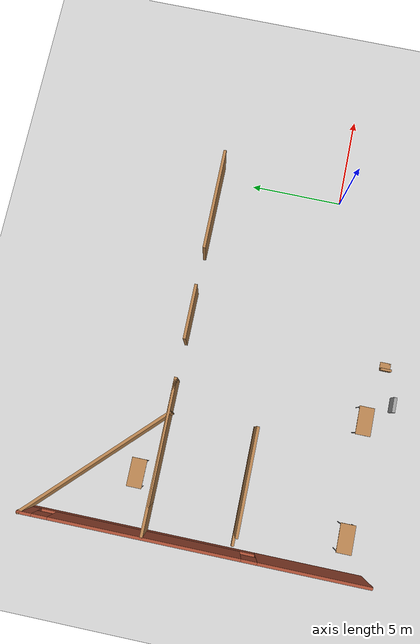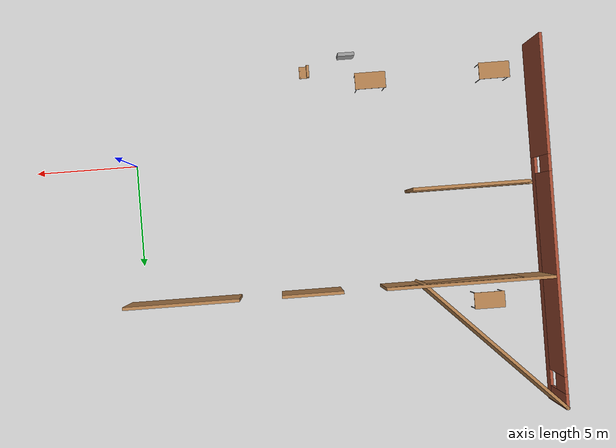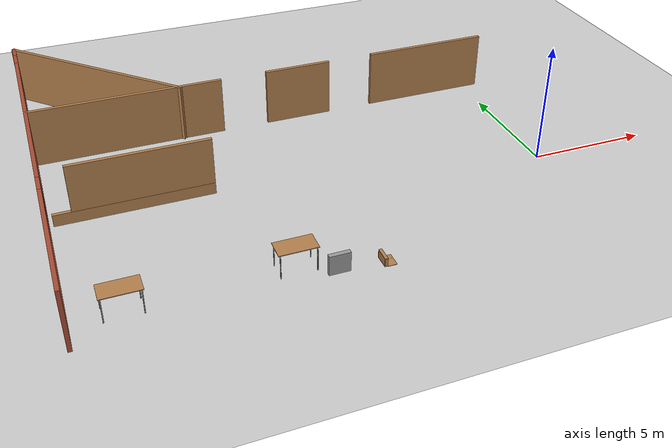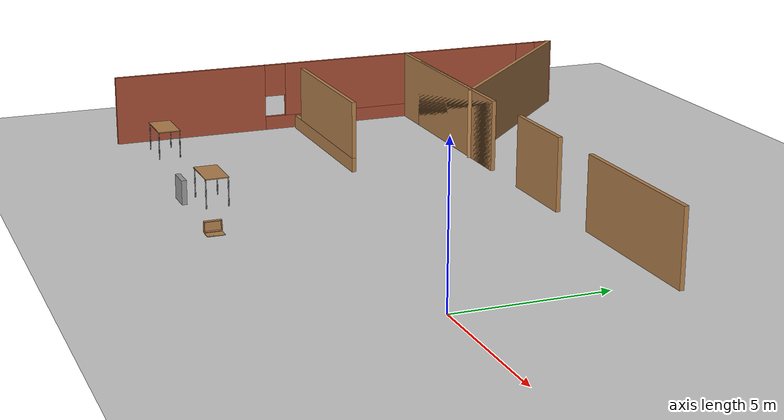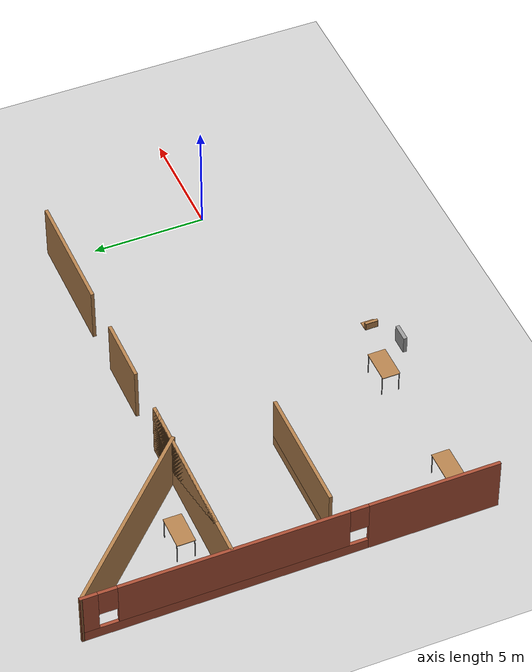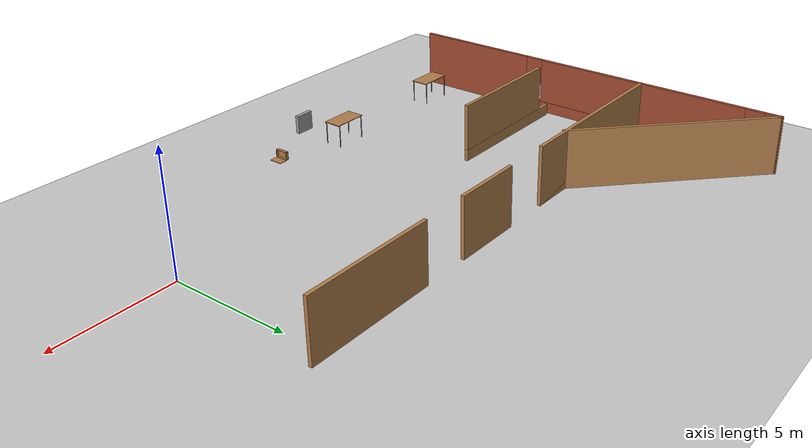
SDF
<sdf version="1.6">
 <world name="default">
  <model name="ground_plane">
   <static>1</static>
   <link name="link">
    <collision name="collision">
     <geometry><plane><normal>0 0 1</normal><size>100 100</size></plane></geometry>
     <surface>
      <contact><collide_bitmask>65535</collide_bitmask></contact>
      <friction><ode><mu>100</mu><mu2>50</mu2></ode></friction>
     </surface>
    </collision>
    <visual name="visual">
     <cast_shadows>0</cast_shadows>
     <geometry><plane><normal>0 0 1</normal><size>100 100</size></plane></geometry>
     <material>
      <script><uri>file://media/materials/scripts/gazebo.material</uri><name>Gazebo/Grey</name></script>
     </material>
    </visual>
   </link>
  </model>
  <model name="table_0">
   <static>1</static>
   <link name="link">
    <collision name="surface">
     <pose>0 0 1 0 -0 0</pose>
     <geometry><box><size>1.5 0.8 0.03</size></box></geometry>
     <surface><friction><ode><mu>0.6</mu><mu2>0.6</mu2></ode></friction></surface>
    </collision>
    <visual name="visual1">
     <pose>0 0 1 0 -0 0</pose>
     <geometry><box><size>1.5 0.8 0.03</size></box></geometry>
     <material>
      <script><uri>file://media/materials/scripts/gazebo.material</uri><name>Gazebo/Wood</name></script>
     </material>
    </visual>
    <collision name="front_left_leg">
     <pose>0.68 0.38 0.5 0 -0 0</pose>
     <geometry><cylinder><radius>0.02</radius><length>1</length></cylinder></geometry>
    </collision>
    <visual name="front_left_leg">
     <pose>0.68 0.38 0.5 0 -0 0</pose>
     <geometry><cylinder><radius>0.02</radius><length>1</length></cylinder></geometry>
     <material>
      <script><uri>file://media/materials/scripts/gazebo.material</uri><name>Gazebo/Grey</name></script>
     </material>
    </visual>
    <collision name="front_right_leg">
     <pose>0.68 -0.38 0.5 0 -0 0</pose>
     <geometry><cylinder><radius>0.02</radius><length>1</length></cylinder></geometry>
    </collision>
    <visual name="front_right_leg">
     <pose>0.68 -0.38 0.5 0 -0 0</pose>
     <geometry><cylinder><radius>0.02</radius><length>1</length></cylinder></geometry>
     <material>
      <script><uri>file://media/materials/scripts/gazebo.material</uri><name>Gazebo/Grey</name></script>
     </material>
    </visual>
    <collision name="back_right_leg">
     <pose>-0.68 -0.38 0.5 0 -0 0</pose>
     <geometry><cylinder><radius>0.02</radius><length>1</length></cylinder></geometry>
    </collision>
    <visual name="back_right_leg">
     <pose>-0.68 -0.38 0.5 0 -0 0</pose>
     <geometry><cylinder><radius>0.02</radius><length>1</length></cylinder></geometry>
     <material>
      <script><uri>file://media/materials/scripts/gazebo.material</uri><name>Gazebo/Grey</name></script>
     </material>
    </visual>
    <collision name="back_left_leg">
     <pose>-0.68 0.38 0.5 0 -0 0</pose>
     <geometry><cylinder><radius>0.02</radius><length>1</length></cylinder></geometry>
    </collision>
    <visual name="back_left_leg">
     <pose>-0.68 0.38 0.5 0 -0 0</pose>
     <geometry><cylinder><radius>0.02</radius><length>1</length></cylinder></geometry>
     <material>
      <script><uri>file://media/materials/scripts/gazebo.material</uri><name>Gazebo/Grey</name></script>
     </material>
    </visual>
   </link>
   <pose>-11.8478 -3.25901 0 0 -0 0</pose>
  </model>
  <model name="table_1">
   <static>1</static>
   <link name="link">
    <collision name="surface">
     <pose>0 0 1 0 -0 0</pose>
     <geometry><box><size>1.5 0.8 0.03</size></box></geometry>
     <surface><friction><ode><mu>0.6</mu><mu2>0.6</mu2></ode></friction></surface>
    </collision>
    <visual name="visual1">
     <pose>0 0 1 0 -0 0</pose>
     <geometry><box><size>1.5 0.8 0.03</size></box></geometry>
     <material>
      <script><uri>file://media/materials/scripts/gazebo.material</uri><name>Gazebo/Wood</name></script>
     </material>
    </visual>
    <collision name="front_left_leg">
     <pose>0.68 0.38 0.5 0 -0 0</pose>
     <geometry><cylinder><radius>0.02</radius><length>1</length></cylinder></geometry>
    </collision>
    <visual name="front_left_leg">
     <pose>0.68 0.38 0.5 0 -0 0</pose>
     <geometry><cylinder><radius>0.02</radius><length>1</length></cylinder></geometry>
     <material>
      <script><uri>file://media/materials/scripts/gazebo.material</uri><name>Gazebo/Grey</name></script>
     </material>
    </visual>
    <collision name="front_right_leg">
     <pose>0.68 -0.38 0.5 0 -0 0</pose>
     <geometry><cylinder><radius>0.02</radius><length>1</length></cylinder></geometry>
    </collision>
    <visual name="front_right_leg">
     <pose>0.68 -0.38 0.5 0 -0 0</pose>
     <geometry><cylinder><radius>0.02</radius><length>1</length></cylinder></geometry>
     <material>
      <script><uri>file://media/materials/scripts/gazebo.material</uri><name>Gazebo/Grey</name></script>
     </material>
    </visual>
    <collision name="back_right_leg">
     <pose>-0.68 -0.38 0.5 0 -0 0</pose>
     <geometry><cylinder><radius>0.02</radius><length>1</length></cylinder></geometry>
    </collision>
    <visual name="back_right_leg">
     <pose>-0.68 -0.38 0.5 0 -0 0</pose>
     <geometry><cylinder><radius>0.02</radius><length>1</length></cylinder></geometry>
     <material>
      <script><uri>file://media/materials/scripts/gazebo.material</uri><name>Gazebo/Grey</name></script>
     </material>
    </visual>
    <collision name="back_left_leg">
     <pose>-0.68 0.38 0.5 0 -0 0</pose>
     <geometry><cylinder><radius>0.02</radius><length>1</length></cylinder></geometry>
    </collision>
    <visual name="back_left_leg">
     <pose>-0.68 0.38 0.5 0 -0 0</pose>
     <geometry><cylinder><radius>0.02</radius><length>1</length></cylinder></geometry>
     <material>
      <script><uri>file://media/materials/scripts/gazebo.material</uri><name>Gazebo/Grey</name></script>
     </material>
    </visual>
   </link>
   <pose>-17.9186 -3.30988 0 0 -0 0</pose>
  </model>
  <model name="table_2">
   <static>1</static>
   <link name="link">
    <collision name="surface">
     <pose>0 0 1 0 -0 0</pose>
     <geometry><box><size>1.5 0.8 0.03</size></box></geometry>
     <surface><friction><ode><mu>0.6</mu><mu2>0.6</mu2></ode></friction></surface>
    </collision>
    <visual name="visual1">
     <pose>0 0 1 0 -0 0</pose>
     <geometry><box><size>1.5 0.8 0.03</size></box></geometry>
     <material>
      <script><uri>file://media/materials/scripts/gazebo.material</uri><name>Gazebo/Wood</name></script>
     </material>
    </visual>
    <collision name="front_left_leg">
     <pose>0.68 0.38 0.5 0 -0 0</pose>
     <geometry><cylinder><radius>0.02</radius><length>1</length></cylinder></geometry>
    </collision>
    <visual name="front_left_leg">
     <pose>0.68 0.38 0.5 0 -0 0</pose>
     <geometry><cylinder><radius>0.02</radius><length>1</length></cylinder></geometry>
     <material>
      <script><uri>file://media/materials/scripts/gazebo.material</uri><name>Gazebo/Grey</name></script>
     </material>
    </visual>
    <collision name="front_right_leg">
     <pose>0.68 -0.38 0.5 0 -0 0</pose>
     <geometry><cylinder><radius>0.02</radius><length>1</length></cylinder></geometry>
    </collision>
    <visual name="front_right_leg">
     <pose>0.68 -0.38 0.5 0 -0 0</pose>
     <geometry><cylinder><radius>0.02</radius><length>1</length></cylinder></geometry>
     <material>
      <script><uri>file://media/materials/scripts/gazebo.material</uri><name>Gazebo/Grey</name></script>
     </material>
    </visual>
    <collision name="back_right_leg">
     <pose>-0.68 -0.38 0.5 0 -0 0</pose>
     <geometry><cylinder><radius>0.02</radius><length>1</length></cylinder></geometry>
    </collision>
    <visual name="back_right_leg">
     <pose>-0.68 -0.38 0.5 0 -0 0</pose>
     <geometry><cylinder><radius>0.02</radius><length>1</length></cylinder></geometry>
     <material>
      <script><uri>file://media/materials/scripts/gazebo.material</uri><name>Gazebo/Grey</name></script>
     </material>
    </visual>
    <collision name="back_left_leg">
     <pose>-0.68 0.38 0.5 0 -0 0</pose>
     <geometry><cylinder><radius>0.02</radius><length>1</length></cylinder></geometry>
    </collision>
    <visual name="back_left_leg">
     <pose>-0.68 0.38 0.5 0 -0 0</pose>
     <geometry><cylinder><radius>0.02</radius><length>1</length></cylinder></geometry>
     <material>
      <script><uri>file://media/materials/scripts/gazebo.material</uri><name>Gazebo/Grey</name></script>
     </material>
    </visual>
   </link>
   <pose>-16.8726 7.8756 0 0 -0 0</pose>
  </model>
  <model name="wooden_case">
   <link name="base">
    <pose>0 0 0.024 0 -0 0</pose>
    <inertial>
     <pose>-0.022184 0 0.171592 0 -0 0</pose>
     <mass>3.96264</mass>
     <inertia>
      <ixx>0.213536</ixx>
      <ixy>0</ixy>
      <ixz>0.000779377</ixz>
      <iyy>0.0708943</iyy>
      <iyz>0</iyz>
      <izz>0.154604</izz>
     </inertia>
    </inertial>
    <collision name="collision_back">
     <pose>-0.053975 0 0.1778 0 -0 0</pose>
     <geometry><box><size>0.01905 0.5461 0.3175</size></box></geometry>
     <surface>
      <contact>
       <poissons_ratio>0.347</poissons_ratio>
       <elastic_modulus>8.8e+09</elastic_modulus>
       <ode><kp>100000</kp><kd>100</kd><max_vel>100</max_vel><min_depth>0.001</min_depth></ode>
      </contact>
      <friction>
       <torsional>
        <coefficient>1</coefficient>
        <use_patch_radius>0</use_patch_radius>
        <surface_radius>0.01</surface_radius>
       </torsional>
      </friction>
     </surface>
    </collision>
    <visual name="visual_back">
     <pose>-0.053975 0 0.1778 0 -0 0</pose>
     <geometry><box><size>0.01905 0.5461 0.3175</size></box></geometry>
     <material>
      <script><uri>file://media/materials/scripts/gazebo.material</uri><name>Gazebo/Wood</name></script>
     </material>
    </visual>
    <collision name="collision_bottom">
     <pose>0 0 0.009525 0 -0 0</pose>
     <geometry><box><size>0.127 0.5842 0.01905</size></box></geometry>
     <surface>
      <contact>
       <poissons_ratio>0.347</poissons_ratio>
       <elastic_modulus>8.8e+09</elastic_modulus>
       <ode><kp>100000</kp><kd>100</kd><max_vel>100</max_vel><min_depth>0.001</min_depth></ode>
      </contact>
      <friction>
       <torsional>
        <coefficient>1</coefficient>
        <use_patch_radius>0</use_patch_radius>
        <surface_radius>0.01</surface_radius>
       </torsional>
      </friction>
     </surface>
    </collision>
    <visual name="visual_bottom">
     <pose>0 0 0.009525 0 -0 0</pose>
     <geometry><box><size>0.127 0.5842 0.01905</size></box></geometry>
     <material>
      <script><uri>file://media/materials/scripts/gazebo.material</uri><name>Gazebo/Wood</name></script>
     </material>
    </visual>
    <collision name="collision_top">
     <pose>0 0 0.346075 0 -0 0</pose>
     <geometry><box><size>0.127 0.5842 0.01905</size></box></geometry>
     <surface>
      <contact>
       <poissons_ratio>0.347</poissons_ratio>
       <elastic_modulus>8.8e+09</elastic_modulus>
       <ode><kp>100000</kp><kd>100</kd><max_vel>100</max_vel><min_depth>0.001</min_depth></ode>
      </contact>
      <friction>
       <torsional>
        <coefficient>1</coefficient>
        <use_patch_radius>0</use_patch_radius>
        <surface_radius>0.01</surface_radius>
       </torsional>
      </friction>
     </surface>
    </collision>
    <visual name="visual_top">
     <pose>0 0 0.346075 0 -0 0</pose>
     <geometry><box><size>0.127 0.5842 0.01905</size></box></geometry>
     <material>
      <script><uri>file://media/materials/scripts/gazebo.material</uri><name>Gazebo/Wood</name></script>
     </material>
    </visual>
    <collision name="collision_left">
     <pose>0 -0.282575 0.1778 0 -0 0</pose>
     <geometry><box><size>0.127 0.01905 0.3175</size></box></geometry>
     <surface>
      <contact>
       <poissons_ratio>0.347</poissons_ratio>
       <elastic_modulus>8.8e+09</elastic_modulus>
       <ode><kp>100000</kp><kd>100</kd><max_vel>100</max_vel><min_depth>0.001</min_depth></ode>
      </contact>
      <friction>
       <torsional>
        <coefficient>1</coefficient>
        <use_patch_radius>0</use_patch_radius>
        <surface_radius>0.01</surface_radius>
       </torsional>
      </friction>
     </surface>
    </collision>
    <visual name="visual_left">
     <pose>0 -0.282575 0.1778 0 -0 0</pose>
     <geometry><box><size>0.127 0.01905 0.3175</size></box></geometry>
     <material>
      <script><uri>file://media/materials/scripts/gazebo.material</uri><name>Gazebo/Wood</name></script>
     </material>
    </visual>
    <collision name="collision_right">
     <pose>0 0.282575 0.1778 0 -0 0</pose>
     <geometry><box><size>0.127 0.01905 0.3175</size></box></geometry>
     <surface>
      <contact>
       <poissons_ratio>0.347</poissons_ratio>
       <elastic_modulus>8.8e+09</elastic_modulus>
       <ode><kp>100000</kp><kd>100</kd><max_vel>100</max_vel><min_depth>0.001</min_depth></ode>
      </contact>
      <friction>
       <torsional>
        <coefficient>1</coefficient>
        <use_patch_radius>0</use_patch_radius>
        <surface_radius>0.01</surface_radius>
       </torsional>
      </friction>
     </surface>
    </collision>
    <visual name="visual_right">
     <pose>0 0.282575 0.1778 0 -0 0</pose>
     <geometry><box><size>0.127 0.01905 0.3175</size></box></geometry>
     <material>
      <script><uri>file://media/materials/scripts/gazebo.material</uri><name>Gazebo/Wood</name></script>
     </material>
    </visual>
    <collision name="collision_block_left">
     <pose>0.0095 -0.2151 -0.012 0 -0 0</pose>
     <geometry><box><size>0.108 0.05 0.024</size></box></geometry>
     <surface>
      <contact>
       <poissons_ratio>0.347</poissons_ratio>
       <elastic_modulus>8.8e+09</elastic_modulus>
       <ode><kp>100000</kp><kd>100</kd><max_vel>100</max_vel><min_depth>0.001</min_depth></ode>
      </contact>
      <friction>
       <torsional>
        <coefficient>1</coefficient>
        <use_patch_radius>0</use_patch_radius>
        <surface_radius>0.01</surface_radius>
       </torsional>
      </friction>
     </surface>
    </collision>
    <visual name="visual_block_left">
     <pose>0.0095 -0.2151 -0.012 0 -0 0</pose>
     <geometry><box><size>0.108 0.05 0.024</size></box></geometry>
     <material>
      <script><uri>file://media/materials/scripts/gazebo.material</uri><name>Gazebo/Wood</name></script>
     </material>
    </visual>
    <collision name="collision_block_right">
     <pose>0.0095 0.2151 -0.012 0 -0 0</pose>
     <geometry><box><size>0.108 0.05 0.024</size></box></geometry>
     <surface>
      <contact>
       <poissons_ratio>0.347</poissons_ratio>
       <elastic_modulus>8.8e+09</elastic_modulus>
       <ode><kp>100000</kp><kd>100</kd><max_vel>100</max_vel><min_depth>0.001</min_depth></ode>
      </contact>
      <friction>
       <torsional>
        <coefficient>1</coefficient>
        <use_patch_radius>0</use_patch_radius>
        <surface_radius>0.01</surface_radius>
       </torsional>
      </friction>
     </surface>
    </collision>
    <visual name="visual_block_right">
     <pose>0.0095 0.2151 -0.012 0 -0 0</pose>
     <geometry><box><size>0.108 0.05 0.024</size></box></geometry>
     <material>
      <script><uri>file://media/materials/scripts/gazebo.material</uri><name>Gazebo/Wood</name></script>
     </material>
    </visual>
   </link>
   <link name="lid">
    <pose>0.243775 0 0.009525 0 -0 0</pose>
    <inertial>
     <mass>1.97874</mass>
     <inertia>
      <ixx>0.0563367</ixx>
      <ixy>0</ixy>
      <ixz>0</ixz>
      <iyy>0.020911</iyy>
      <iyz>0</iyz>
      <izz>0.0771281</izz>
     </inertia>
    </inertial>
    <collision name="collision">
     <geometry><box><size>0.3556 0.5842 0.01905</size></box></geometry>
     <surface>
      <contact>
       <poissons_ratio>0.347</poissons_ratio>
       <elastic_modulus>8.8e+09</elastic_modulus>
       <ode><kp>100000</kp><kd>100</kd><max_vel>100</max_vel><min_depth>0.001</min_depth></ode>
      </contact>
      <friction>
       <torsional>
        <coefficient>1</coefficient>
        <use_patch_radius>0</use_patch_radius>
        <surface_radius>0.01</surface_radius>
       </torsional>
      </friction>
     </surface>
    </collision>
    <visual name="visual">
     <geometry><box><size>0.3556 0.5842 0.01905</size></box></geometry>
     <material>
      <script><uri>file://media/materials/scripts/gazebo.material</uri><name>Gazebo/Wood</name></script>
     </material>
    </visual>
    <visual name="tee_nut_1">
     <pose>0.122 -0.216 0 0 -0 0</pose>
     <geometry><cylinder><radius>0.00635</radius><length>0.0192405</length></cylinder></geometry>
     <material>
      <script><uri>file://media/materials/scripts/gazebo.material</uri><name>Gazebo/Grey</name></script>
     </material>
    </visual>
    <visual name="tee_nut_2">
     <pose>0.122 -0.088 0 0 -0 0</pose>
     <geometry><cylinder><radius>0.00635</radius><length>0.0192405</length></cylinder></geometry>
     <material>
      <script><uri>file://media/materials/scripts/gazebo.material</uri><name>Gazebo/Grey</name></script>
     </material>
    </visual>
    <visual name="tee_nut_3">
     <pose>0.122 0.088 0 0 -0 0</pose>
     <geometry><cylinder><radius>0.00635</radius><length>0.0192405</length></cylinder></geometry>
     <material>
      <script><uri>file://media/materials/scripts/gazebo.material</uri><name>Gazebo/Grey</name></script>
     </material>
    </visual>
    <visual name="tee_nut_4">
     <pose>0.122 0.216 0 0 -0 0</pose>
     <geometry><cylinder><radius>0.00635</radius><length>0.0192405</length></cylinder></geometry>
     <material>
      <script><uri>file://media/materials/scripts/gazebo.material</uri><name>Gazebo/Grey</name></script>
     </material>
    </visual>
   </link>
   <joint name="lid_hinge" type="revolute">
    <pose>-0.1778 0 0.01905 0 -0 0</pose>
    <parent>base</parent>
    <child>lid</child>
    <axis>
     <xyz>0 1 0</xyz>
     <limit><upper>0.523599</upper><lower>-1.5708</lower></limit>
     <use_parent_model_frame>0</use_parent_model_frame>
     <dynamics><spring_reference>0</spring_reference><spring_stiffness>0</spring_stiffness></dynamics>
    </axis>
   </joint>
   <pose>-8.86546 -4.06321 -0.001057 0 -0.000428 -1e-06</pose>
  </model>
  <model name="mybuilding">
   <link name="Wall_43">
    <pose>-19.7987 0.007562 0 0 -0 1.5708</pose>
    <visual name="Wall_43_Visual_0">
     <pose>-6.02432 0 1.25 0 -0 0</pose>
     <geometry><box><size>5.70136 0.15 2.5</size></box></geometry>
     <material>
      <script><uri>file://media/materials/scripts/gazebo.material</uri><name>Gazebo/Bricks</name></script>
      <ambient>1 1 1 1</ambient>
      <shader type="pixel"/>
      <diffuse>1 1 1 1</diffuse>
      <specular>0.2 0.2 0.2 1</specular>
      <emissive>0 0 0 1</emissive>
     </material>
     <meta><layer>0</layer></meta>
    </visual>
    <visual name="Wall_43_Visual_1">
     <pose>2.85068 0 0.25 0 -0 0</pose>
     <geometry><box><size>12.0486 0.15 0.5</size></box></geometry>
     <material>
      <script><uri>file://media/materials/scripts/gazebo.material</uri><name>Gazebo/Bricks</name></script>
      <ambient>1 1 1 1</ambient>
      <shader type="pixel"/>
      <diffuse>1 1 1 1</diffuse>
      <specular>0.2 0.2 0.2 1</specular>
      <emissive>0 0 0 1</emissive>
     </material>
     <meta><layer>0</layer></meta>
    </visual>
    <visual name="Wall_43_Visual_2">
     <pose>2.47839 0 1.5 0 -0 0</pose>
     <geometry><box><size>9.70406 0.15 2</size></box></geometry>
     <material>
      <script><uri>file://media/materials/scripts/gazebo.material</uri><name>Gazebo/Bricks</name></script>
      <ambient>1 1 1 1</ambient>
      <shader type="pixel"/>
      <diffuse>1 1 1 1</diffuse>
      <specular>0.2 0.2 0.2 1</specular>
      <emissive>0 0 0 1</emissive>
     </material>
     <meta><layer>0</layer></meta>
    </visual>
    <visual name="Wall_43_Visual_3">
     <pose>8.50271 0 1.5 0 -0 0</pose>
     <geometry><box><size>0.744584 0.15 2</size></box></geometry>
     <material>
      <script><uri>file://media/materials/scripts/gazebo.material</uri><name>Gazebo/Bricks</name></script>
      <ambient>1 1 1 1</ambient>
      <shader type="pixel"/>
      <diffuse>1 1 1 1</diffuse>
      <specular>0.2 0.2 0.2 1</specular>
      <emissive>0 0 0 1</emissive>
     </material>
     <meta><layer>0</layer></meta>
    </visual>
    <visual name="Wall_43_Visual_4">
     <pose>-2.77364 0 1.9 0 -0 0</pose>
     <geometry><box><size>0.8 0.15 1.2</size></box></geometry>
     <material>
      <script><uri>file://media/materials/scripts/gazebo.material</uri><name>Gazebo/Bricks</name></script>
      <ambient>1 1 1 1</ambient>
      <shader type="pixel"/>
      <diffuse>1 1 1 1</diffuse>
      <specular>0.2 0.2 0.2 1</specular>
      <emissive>0 0 0 1</emissive>
     </material>
     <meta><layer>0</layer></meta>
    </visual>
    <visual name="Wall_43_Visual_5">
     <pose>7.73042 0 1.9 0 -0 0</pose>
     <geometry><box><size>0.8 0.15 1.2</size></box></geometry>
     <material>
      <script><uri>file://media/materials/scripts/gazebo.material</uri><name>Gazebo/Bricks</name></script>
      <ambient>1 1 1 1</ambient>
      <shader type="pixel"/>
      <diffuse>1 1 1 1</diffuse>
      <specular>0.2 0.2 0.2 1</specular>
      <emissive>0 0 0 1</emissive>
     </material>
     <meta><layer>0</layer></meta>
    </visual>
    <collision name="Wall_43_Collision_0">
     <pose>-6.02432 0 1.25 0 -0 0</pose>
     <geometry><box><size>5.70136 0.15 2.5</size></box></geometry>
     <surface>
      <friction>
       <ode><mu>1</mu><mu2>1</mu2><fdir1>0 0 0</fdir1><slip1>0</slip1><slip2>0</slip2></ode>
       <torsional>
        <coefficient>1</coefficient>
        <patch_radius>0</patch_radius>
        <surface_radius>0</surface_radius>
        <use_patch_radius>1</use_patch_radius>
        <ode><slip>0</slip></ode>
       </torsional>
      </friction>
      <bounce><restitution_coefficient>0</restitution_coefficient><threshold>1e+06</threshold></bounce>
      <contact>
       <collide_without_contact>0</collide_without_contact>
       <collide_without_contact_bitmask>1</collide_without_contact_bitmask>
       <collide_bitmask>1</collide_bitmask>
       <ode>
        <soft_cfm>0</soft_cfm>
        <soft_erp>0.2</soft_erp>
        <kp>1e+13</kp>
        <kd>1</kd>
        <max_vel>0.01</max_vel>
        <min_depth>0</min_depth>
       </ode>
       <bullet>
        <split_impulse>1</split_impulse>
        <split_impulse_penetration_threshold>-0.01</split_impulse_penetration_threshold>
        <soft_cfm>0</soft_cfm>
        <soft_erp>0.2</soft_erp>
        <kp>1e+13</kp>
        <kd>1</kd>
       </bullet>
      </contact>
     </surface>
    </collision>
    <collision name="Wall_43_Collision_1">
     <pose>2.85068 0 0.25 0 -0 0</pose>
     <geometry><box><size>12.0486 0.15 0.5</size></box></geometry>
     <surface>
      <friction>
       <ode><mu>1</mu><mu2>1</mu2><fdir1>0 0 0</fdir1><slip1>0</slip1><slip2>0</slip2></ode>
       <torsional>
        <coefficient>1</coefficient>
        <patch_radius>0</patch_radius>
        <surface_radius>0</surface_radius>
        <use_patch_radius>1</use_patch_radius>
        <ode><slip>0</slip></ode>
       </torsional>
      </friction>
      <bounce><restitution_coefficient>0</restitution_coefficient><threshold>1e+06</threshold></bounce>
      <contact>
       <collide_without_contact>0</collide_without_contact>
       <collide_without_contact_bitmask>1</collide_without_contact_bitmask>
       <collide_bitmask>1</collide_bitmask>
       <ode>
        <soft_cfm>0</soft_cfm>
        <soft_erp>0.2</soft_erp>
        <kp>1e+13</kp>
        <kd>1</kd>
        <max_vel>0.01</max_vel>
        <min_depth>0</min_depth>
       </ode>
       <bullet>
        <split_impulse>1</split_impulse>
        <split_impulse_penetration_threshold>-0.01</split_impulse_penetration_threshold>
        <soft_cfm>0</soft_cfm>
        <soft_erp>0.2</soft_erp>
        <kp>1e+13</kp>
        <kd>1</kd>
       </bullet>
      </contact>
     </surface>
    </collision>
    <collision name="Wall_43_Collision_2">
     <pose>2.47839 0 1.5 0 -0 0</pose>
     <geometry><box><size>9.70406 0.15 2</size></box></geometry>
     <surface>
      <friction>
       <ode><mu>1</mu><mu2>1</mu2><fdir1>0 0 0</fdir1><slip1>0</slip1><slip2>0</slip2></ode>
       <torsional>
        <coefficient>1</coefficient>
        <patch_radius>0</patch_radius>
        <surface_radius>0</surface_radius>
        <use_patch_radius>1</use_patch_radius>
        <ode><slip>0</slip></ode>
       </torsional>
      </friction>
      <bounce><restitution_coefficient>0</restitution_coefficient><threshold>1e+06</threshold></bounce>
      <contact>
       <collide_without_contact>0</collide_without_contact>
       <collide_without_contact_bitmask>1</collide_without_contact_bitmask>
       <collide_bitmask>1</collide_bitmask>
       <ode>
        <soft_cfm>0</soft_cfm>
        <soft_erp>0.2</soft_erp>
        <kp>1e+13</kp>
        <kd>1</kd>
        <max_vel>0.01</max_vel>
        <min_depth>0</min_depth>
       </ode>
       <bullet>
        <split_impulse>1</split_impulse>
        <split_impulse_penetration_threshold>-0.01</split_impulse_penetration_threshold>
        <soft_cfm>0</soft_cfm>
        <soft_erp>0.2</soft_erp>
        <kp>1e+13</kp>
        <kd>1</kd>
       </bullet>
      </contact>
     </surface>
    </collision>
    <collision name="Wall_43_Collision_3">
     <pose>8.50271 0 1.5 0 -0 0</pose>
     <geometry><box><size>0.744584 0.15 2</size></box></geometry>
     <surface>
      <friction>
       <ode><mu>1</mu><mu2>1</mu2><fdir1>0 0 0</fdir1><slip1>0</slip1><slip2>0</slip2></ode>
       <torsional>
        <coefficient>1</coefficient>
        <patch_radius>0</patch_radius>
        <surface_radius>0</surface_radius>
        <use_patch_radius>1</use_patch_radius>
        <ode><slip>0</slip></ode>
       </torsional>
      </friction>
      <bounce><restitution_coefficient>0</restitution_coefficient><threshold>1e+06</threshold></bounce>
      <contact>
       <collide_without_contact>0</collide_without_contact>
       <collide_without_contact_bitmask>1</collide_without_contact_bitmask>
       <collide_bitmask>1</collide_bitmask>
       <ode>
        <soft_cfm>0</soft_cfm>
        <soft_erp>0.2</soft_erp>
        <kp>1e+13</kp>
        <kd>1</kd>
        <max_vel>0.01</max_vel>
        <min_depth>0</min_depth>
       </ode>
       <bullet>
        <split_impulse>1</split_impulse>
        <split_impulse_penetration_threshold>-0.01</split_impulse_penetration_threshold>
        <soft_cfm>0</soft_cfm>
        <soft_erp>0.2</soft_erp>
        <kp>1e+13</kp>
        <kd>1</kd>
       </bullet>
      </contact>
     </surface>
    </collision>
    <collision name="Wall_43_Collision_4">
     <pose>-2.77364 0 1.9 0 -0 0</pose>
     <geometry><box><size>0.8 0.15 1.2</size></box></geometry>
     <surface>
      <friction>
       <ode><mu>1</mu><mu2>1</mu2><fdir1>0 0 0</fdir1><slip1>0</slip1><slip2>0</slip2></ode>
       <torsional>
        <coefficient>1</coefficient>
        <patch_radius>0</patch_radius>
        <surface_radius>0</surface_radius>
        <use_patch_radius>1</use_patch_radius>
        <ode><slip>0</slip></ode>
       </torsional>
      </friction>
      <bounce><restitution_coefficient>0</restitution_coefficient><threshold>1e+06</threshold></bounce>
      <contact>
       <collide_without_contact>0</collide_without_contact>
       <collide_without_contact_bitmask>1</collide_without_contact_bitmask>
       <collide_bitmask>1</collide_bitmask>
       <ode>
        <soft_cfm>0</soft_cfm>
        <soft_erp>0.2</soft_erp>
        <kp>1e+13</kp>
        <kd>1</kd>
        <max_vel>0.01</max_vel>
        <min_depth>0</min_depth>
       </ode>
       <bullet>
        <split_impulse>1</split_impulse>
        <split_impulse_penetration_threshold>-0.01</split_impulse_penetration_threshold>
        <soft_cfm>0</soft_cfm>
        <soft_erp>0.2</soft_erp>
        <kp>1e+13</kp>
        <kd>1</kd>
       </bullet>
      </contact>
     </surface>
    </collision>
    <collision name="Wall_43_Collision_5">
     <pose>7.73042 0 1.9 0 -0 0</pose>
     <geometry><box><size>0.8 0.15 1.2</size></box></geometry>
     <surface>
      <friction>
       <ode><mu>1</mu><mu2>1</mu2><fdir1>0 0 0</fdir1><slip1>0</slip1><slip2>0</slip2></ode>
       <torsional>
        <coefficient>1</coefficient>
        <patch_radius>0</patch_radius>
        <surface_radius>0</surface_radius>
        <use_patch_radius>1</use_patch_radius>
        <ode><slip>0</slip></ode>
       </torsional>
      </friction>
      <bounce><restitution_coefficient>0</restitution_coefficient><threshold>1e+06</threshold></bounce>
      <contact>
       <collide_without_contact>0</collide_without_contact>
       <collide_without_contact_bitmask>1</collide_without_contact_bitmask>
       <collide_bitmask>1</collide_bitmask>
       <ode>
        <soft_cfm>0</soft_cfm>
        <soft_erp>0.2</soft_erp>
        <kp>1e+13</kp>
        <kd>1</kd>
        <max_vel>0.01</max_vel>
        <min_depth>0</min_depth>
       </ode>
       <bullet>
        <split_impulse>1</split_impulse>
        <split_impulse_penetration_threshold>-0.01</split_impulse_penetration_threshold>
        <soft_cfm>0</soft_cfm>
        <soft_erp>0.2</soft_erp>
        <kp>1e+13</kp>
        <kd>1</kd>
       </bullet>
      </contact>
     </surface>
    </collision>
   </link>
   <link name="Wall_61">
    <pose>-8.92552 2.61359 0 0 -0 0</pose>
    <visual name="Wall_61_Visual_0">
     <pose>-6.84274 0 1.25 0 -0 0</pose>
     <geometry><box><size>8.06453 0.15 2.5</size></box></geometry>
     <material>
      <script><uri>file://media/materials/scripts/gazebo.material</uri><name>Gazebo/Wood</name></script>
      <ambient>1 1 1 1</ambient>
      <shader type="pixel"/>
      <diffuse>1 1 1 1</diffuse>
      <specular>0.2 0.2 0.2 1</specular>
      <emissive>0 0 0 1</emissive>
     </material>
     <meta><layer>0</layer></meta>
    </visual>
    <visual name="Wall_61_Visual_1">
     <pose>-6.07805 0 1.25 0 -0 0</pose>
     <geometry><box><size>6.53515 0.15 2.5</size></box></geometry>
     <material>
      <script><uri>file://media/materials/scripts/gazebo.material</uri><name>Gazebo/Wood</name></script>
      <ambient>1 1 1 1</ambient>
      <shader type="pixel"/>
      <diffuse>1 1 1 1</diffuse>
      <specular>0.2 0.2 0.2 1</specular>
      <emissive>0 0 0 1</emissive>
     </material>
     <meta><layer>0</layer></meta>
    </visual>
    <visual name="Wall_61_Visual_2">
     <pose>0.654036 0 1.25 0 -0 0</pose>
     <geometry><box><size>2.92902 0.15 2.5</size></box></geometry>
     <material>
      <script><uri>file://media/materials/scripts/gazebo.material</uri><name>Gazebo/Wood</name></script>
      <ambient>1 1 1 1</ambient>
      <shader type="pixel"/>
      <diffuse>1 1 1 1</diffuse>
      <specular>0.2 0.2 0.2 1</specular>
      <emissive>0 0 0 1</emissive>
     </material>
     <meta><layer>0</layer></meta>
    </visual>
    <visual name="Wall_61_Visual_3">
     <pose>6.87507 0 1.25 0 -0 0</pose>
     <geometry><box><size>5.51304 0.15 2.5</size></box></geometry>
     <material>
      <script><uri>file://media/materials/scripts/gazebo.material</uri><name>Gazebo/Wood</name></script>
      <ambient>1 1 1 1</ambient>
      <shader type="pixel"/>
      <diffuse>1 1 1 1</diffuse>
      <specular>0.2 0.2 0.2 1</specular>
      <emissive>0 0 0 1</emissive>
     </material>
     <meta><layer>0</layer></meta>
    </visual>
    <collision name="Wall_61_Collision_1">
     <pose>-6.07805 0 1.25 0 -0 0</pose>
     <geometry><box><size>6.53515 0.15 2.5</size></box></geometry>
     <surface>
      <friction>
       <ode><mu>1</mu><mu2>1</mu2><fdir1>0 0 0</fdir1><slip1>0</slip1><slip2>0</slip2></ode>
       <torsional>
        <coefficient>1</coefficient>
        <patch_radius>0</patch_radius>
        <surface_radius>0</surface_radius>
        <use_patch_radius>1</use_patch_radius>
        <ode><slip>0</slip></ode>
       </torsional>
      </friction>
      <bounce><restitution_coefficient>0</restitution_coefficient><threshold>1e+06</threshold></bounce>
      <contact>
       <collide_without_contact>0</collide_without_contact>
       <collide_without_contact_bitmask>1</collide_without_contact_bitmask>
       <collide_bitmask>1</collide_bitmask>
       <ode>
        <soft_cfm>0</soft_cfm>
        <soft_erp>0.2</soft_erp>
        <kp>1e+13</kp>
        <kd>1</kd>
        <max_vel>0.01</max_vel>
        <min_depth>0</min_depth>
       </ode>
       <bullet>
        <split_impulse>1</split_impulse>
        <split_impulse_penetration_threshold>-0.01</split_impulse_penetration_threshold>
        <soft_cfm>0</soft_cfm>
        <soft_erp>0.2</soft_erp>
        <kp>1e+13</kp>
        <kd>1</kd>
       </bullet>
      </contact>
     </surface>
    </collision>
    <collision name="Wall_61_Collision_0">
     <pose>-6.84274 0 1.25 0 -0 0</pose>
     <geometry><box><size>8.06453 0.15 2.5</size></box></geometry>
     <surface>
      <friction>
       <ode><mu>1</mu><mu2>1</mu2><fdir1>0 0 0</fdir1><slip1>0</slip1><slip2>0</slip2></ode>
       <torsional>
        <coefficient>1</coefficient>
        <patch_radius>0</patch_radius>
        <surface_radius>0</surface_radius>
        <use_patch_radius>1</use_patch_radius>
        <ode><slip>0</slip></ode>
       </torsional>
      </friction>
      <bounce><restitution_coefficient>0</restitution_coefficient><threshold>1e+06</threshold></bounce>
      <contact>
       <collide_without_contact>0</collide_without_contact>
       <collide_without_contact_bitmask>1</collide_without_contact_bitmask>
       <collide_bitmask>1</collide_bitmask>
       <ode>
        <soft_cfm>0</soft_cfm>
        <soft_erp>0.2</soft_erp>
        <kp>1e+13</kp>
        <kd>1</kd>
        <max_vel>0.01</max_vel>
        <min_depth>0</min_depth>
       </ode>
       <bullet>
        <split_impulse>1</split_impulse>
        <split_impulse_penetration_threshold>-0.01</split_impulse_penetration_threshold>
        <soft_cfm>0</soft_cfm>
        <soft_erp>0.2</soft_erp>
        <kp>1e+13</kp>
        <kd>1</kd>
       </bullet>
      </contact>
     </surface>
    </collision>
    <collision name="Wall_61_Collision_2">
     <pose>0.654036 0 1.25 0 -0 0</pose>
     <geometry><box><size>2.92902 0.15 2.5</size></box></geometry>
     <surface>
      <friction>
       <ode><mu>1</mu><mu2>1</mu2><fdir1>0 0 0</fdir1><slip1>0</slip1><slip2>0</slip2></ode>
       <torsional>
        <coefficient>1</coefficient>
        <patch_radius>0</patch_radius>
        <surface_radius>0</surface_radius>
        <use_patch_radius>1</use_patch_radius>
        <ode><slip>0</slip></ode>
       </torsional>
      </friction>
      <bounce><restitution_coefficient>0</restitution_coefficient><threshold>1e+06</threshold></bounce>
      <contact>
       <collide_without_contact>0</collide_without_contact>
       <collide_without_contact_bitmask>1</collide_without_contact_bitmask>
       <collide_bitmask>1</collide_bitmask>
       <ode>
        <soft_cfm>0</soft_cfm>
        <soft_erp>0.2</soft_erp>
        <kp>1e+13</kp>
        <kd>1</kd>
        <max_vel>0.01</max_vel>
        <min_depth>0</min_depth>
       </ode>
       <bullet>
        <split_impulse>1</split_impulse>
        <split_impulse_penetration_threshold>-0.01</split_impulse_penetration_threshold>
        <soft_cfm>0</soft_cfm>
        <soft_erp>0.2</soft_erp>
        <kp>1e+13</kp>
        <kd>1</kd>
       </bullet>
      </contact>
     </surface>
    </collision>
    <collision name="Wall_61_Collision_3">
     <pose>6.87507 0 1.25 0 -0 0</pose>
     <geometry><box><size>5.51304 0.15 2.5</size></box></geometry>
     <surface>
      <friction>
       <ode><mu>1</mu><mu2>1</mu2><fdir1>0 0 0</fdir1><slip1>0</slip1><slip2>0</slip2></ode>
       <torsional>
        <coefficient>1</coefficient>
        <patch_radius>0</patch_radius>
        <surface_radius>0</surface_radius>
        <use_patch_radius>1</use_patch_radius>
        <ode><slip>0</slip></ode>
       </torsional>
      </friction>
      <bounce><restitution_coefficient>0</restitution_coefficient><threshold>1e+06</threshold></bounce>
      <contact>
       <collide_without_contact>0</collide_without_contact>
       <collide_without_contact_bitmask>1</collide_without_contact_bitmask>
       <collide_bitmask>1</collide_bitmask>
       <ode>
        <soft_cfm>0</soft_cfm>
        <soft_erp>0.2</soft_erp>
        <kp>1e+13</kp>
        <kd>1</kd>
        <max_vel>0.01</max_vel>
        <min_depth>0</min_depth>
       </ode>
       <bullet>
        <split_impulse>1</split_impulse>
        <split_impulse_penetration_threshold>-0.01</split_impulse_penetration_threshold>
        <soft_cfm>0</soft_cfm>
        <soft_erp>0.2</soft_erp>
        <kp>1e+13</kp>
        <kd>1</kd>
       </bullet>
      </contact>
     </surface>
    </collision>
   </link>
   <link name="Wall_64">
    <pose>-16.6698 5.67861 0 0 0 -0.785398</pose>
    <visual name="Wall_64_Visual">
     <pose>0 0 1.25 0 -0 0</pose>
     <geometry><box><size>9 0.15 2.5</size></box></geometry>
     <material>
      <script><uri>file://media/materials/scripts/gazebo.material</uri><name>Gazebo/Wood</name></script>
      <ambient>1 1 1 1</ambient>
      <shader type="pixel"/>
      <diffuse>1 1 1 1</diffuse>
      <specular>0.2 0.2 0.2 1</specular>
      <emissive>0 0 0 1</emissive>
     </material>
     <meta><layer>0</layer></meta>
    </visual>
    <collision name="Wall_64_Collision">
     <pose>0 0 1.25 0 -0 0</pose>
     <geometry><box><size>9 0.15 2.5</size></box></geometry>
     <surface>
      <friction>
       <ode><mu>1</mu><mu2>1</mu2><fdir1>0 0 0</fdir1><slip1>0</slip1><slip2>0</slip2></ode>
       <torsional>
        <coefficient>1</coefficient>
        <patch_radius>0</patch_radius>
        <surface_radius>0</surface_radius>
        <use_patch_radius>1</use_patch_radius>
        <ode><slip>0</slip></ode>
       </torsional>
      </friction>
      <bounce><restitution_coefficient>0</restitution_coefficient><threshold>1e+06</threshold></bounce>
      <contact>
       <collide_without_contact>0</collide_without_contact>
       <collide_without_contact_bitmask>1</collide_without_contact_bitmask>
       <collide_bitmask>1</collide_bitmask>
       <ode>
        <soft_cfm>0</soft_cfm>
        <soft_erp>0.2</soft_erp>
        <kp>1e+13</kp>
        <kd>1</kd>
        <max_vel>0.01</max_vel>
        <min_depth>0</min_depth>
       </ode>
       <bullet>
        <split_impulse>1</split_impulse>
        <split_impulse_penetration_threshold>-0.01</split_impulse_penetration_threshold>
        <soft_cfm>0</soft_cfm>
        <soft_erp>0.2</soft_erp>
        <kp>1e+13</kp>
        <kd>1</kd>
       </bullet>
      </contact>
     </surface>
    </collision>
   </link>
   <link name="Wall_76">
    <pose>-16.444 -1.96608 0 0 -0 0</pose>
    <visual name="Wall_76_Visual_0">
     <pose>0 0 0.25 0 -0 0</pose>
     <geometry><box><size>6.25 0.15 0.5</size></box></geometry>
     <material>
      <script><uri>file://media/materials/scripts/gazebo.material</uri><name>Gazebo/Wood</name></script>
      <ambient>0.435294 0.796078 0.67451 1</ambient>
      <shader type="pixel"/>
      <diffuse>1 1 1 1</diffuse>
      <specular>0.2 0.2 0.2 1</specular>
      <emissive>0 0 0 1</emissive>
     </material>
     <meta><layer>0</layer></meta>
    </visual>
    <visual name="Wall_76_Visual_1">
     <pose>0.3575 0 1.5 0 -0 0</pose>
     <geometry><box><size>5.535 0.15 2</size></box></geometry>
     <material>
      <script><uri>file://media/materials/scripts/gazebo.material</uri><name>Gazebo/Wood</name></script>
      <ambient>0.435294 0.796078 0.67451 1</ambient>
      <shader type="pixel"/>
      <diffuse>1 1 1 1</diffuse>
      <specular>0.2 0.2 0.2 1</specular>
      <emissive>0 0 0 1</emissive>
     </material>
     <meta><layer>0</layer></meta>
    </visual>
    <collision name="Wall_76_Collision_0">
     <pose>0 0 0.25 0 -0 0</pose>
     <geometry><box><size>6.25 0.15 0.5</size></box></geometry>
     <surface>
      <friction>
       <ode><mu>1</mu><mu2>1</mu2><fdir1>0 0 0</fdir1><slip1>0</slip1><slip2>0</slip2></ode>
       <torsional>
        <coefficient>1</coefficient>
        <patch_radius>0</patch_radius>
        <surface_radius>0</surface_radius>
        <use_patch_radius>1</use_patch_radius>
        <ode><slip>0</slip></ode>
       </torsional>
      </friction>
      <bounce><restitution_coefficient>0</restitution_coefficient><threshold>1e+06</threshold></bounce>
      <contact>
       <collide_without_contact>0</collide_without_contact>
       <collide_without_contact_bitmask>1</collide_without_contact_bitmask>
       <collide_bitmask>1</collide_bitmask>
       <ode>
        <soft_cfm>0</soft_cfm>
        <soft_erp>0.2</soft_erp>
        <kp>1e+13</kp>
        <kd>1</kd>
        <max_vel>0.01</max_vel>
        <min_depth>0</min_depth>
       </ode>
       <bullet>
        <split_impulse>1</split_impulse>
        <split_impulse_penetration_threshold>-0.01</split_impulse_penetration_threshold>
        <soft_cfm>0</soft_cfm>
        <soft_erp>0.2</soft_erp>
        <kp>1e+13</kp>
        <kd>1</kd>
       </bullet>
      </contact>
     </surface>
    </collision>
    <collision name="Wall_76_Collision_1">
     <pose>0.3575 0 1.5 0 -0 0</pose>
     <geometry><box><size>5.535 0.15 2</size></box></geometry>
     <surface>
      <friction>
       <ode><mu>1</mu><mu2>1</mu2><fdir1>0 0 0</fdir1><slip1>0</slip1><slip2>0</slip2></ode>
       <torsional>
        <coefficient>1</coefficient>
        <patch_radius>0</patch_radius>
        <surface_radius>0</surface_radius>
        <use_patch_radius>1</use_patch_radius>
        <ode><slip>0</slip></ode>
       </torsional>
      </friction>
      <bounce><restitution_coefficient>0</restitution_coefficient><threshold>1e+06</threshold></bounce>
      <contact>
       <collide_without_contact>0</collide_without_contact>
       <collide_without_contact_bitmask>1</collide_without_contact_bitmask>
       <collide_bitmask>1</collide_bitmask>
       <ode>
        <soft_cfm>0</soft_cfm>
        <soft_erp>0.2</soft_erp>
        <kp>1e+13</kp>
        <kd>1</kd>
        <max_vel>0.01</max_vel>
        <min_depth>0</min_depth>
       </ode>
       <bullet>
        <split_impulse>1</split_impulse>
        <split_impulse_penetration_threshold>-0.01</split_impulse_penetration_threshold>
        <soft_cfm>0</soft_cfm>
        <soft_erp>0.2</soft_erp>
        <kp>1e+13</kp>
        <kd>1</kd>
       </bullet>
      </contact>
     </surface>
    </collision>
   </link>
   <link name="Window_1">
    <pose>-10.755 -8.79074 0.5 0 -0 0</pose>
    <visual name="Window_1_Visual">
     <pose>0 0 0.4 0 -0 0</pose>
     <geometry><box><size>0.8 0.17 0.8</size></box></geometry>
     <material>
      <script><uri>file://media/materials/scripts/gazebo.material</uri><name>Gazebo/Grey</name></script>
      <shader type="pixel"/>
      <ambient>0.3 0.3 0.3 1</ambient>
      <diffuse>0.7 0.7 0.7 1</diffuse>
      <specular>0.01 0.01 0.01 1</specular>
      <emissive>0 0 0 1</emissive>
     </material>
    </visual>
    <collision name="Window_1_Collision">
     <pose>0 0 0.4 0 -0 0</pose>
     <geometry><box><size>0.8 0.17 0.8</size></box></geometry>
     <surface>
      <friction>
       <ode><mu>1</mu><mu2>1</mu2><fdir1>0 0 0</fdir1><slip1>0</slip1><slip2>0</slip2></ode>
       <torsional>
        <coefficient>1</coefficient>
        <patch_radius>0</patch_radius>
        <surface_radius>0</surface_radius>
        <use_patch_radius>1</use_patch_radius>
        <ode><slip>0</slip></ode>
       </torsional>
      </friction>
      <bounce><restitution_coefficient>0</restitution_coefficient><threshold>1e+06</threshold></bounce>
      <contact>
       <collide_without_contact>0</collide_without_contact>
       <collide_without_contact_bitmask>1</collide_without_contact_bitmask>
       <collide_bitmask>1</collide_bitmask>
       <ode>
        <soft_cfm>0</soft_cfm>
        <soft_erp>0.2</soft_erp>
        <kp>1e+13</kp>
        <kd>1</kd>
        <max_vel>0.01</max_vel>
        <min_depth>0</min_depth>
       </ode>
       <bullet>
        <split_impulse>1</split_impulse>
        <split_impulse_penetration_threshold>-0.01</split_impulse_penetration_threshold>
        <soft_cfm>0</soft_cfm>
        <soft_erp>0.2</soft_erp>
        <kp>1e+13</kp>
        <kd>1</kd>
       </bullet>
      </contact>
     </surface>
    </collision>
   </link>
   <static>1</static>
   <pose>0.027091 4.22979 0 0 -0 0</pose>
  </model>
 </world>
</sdf>
